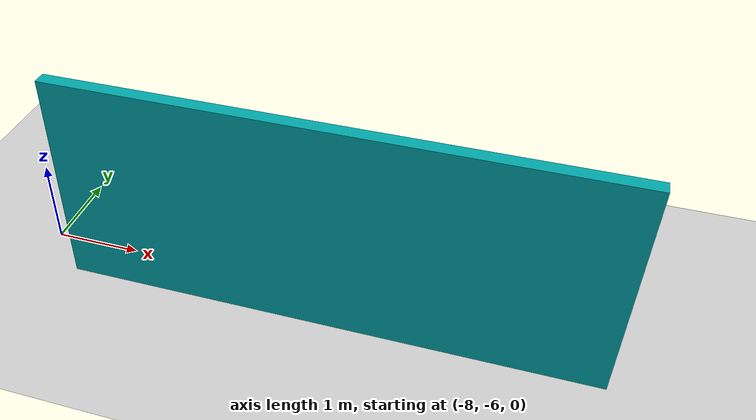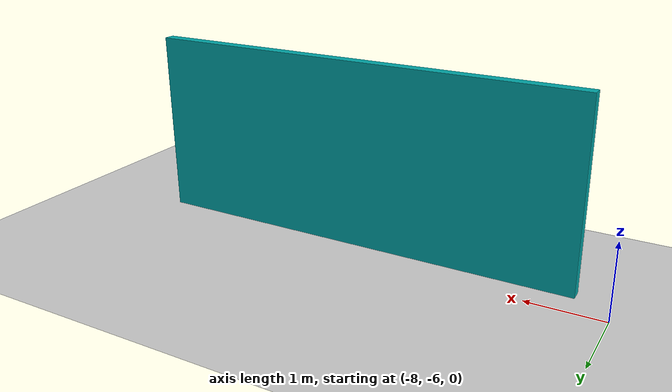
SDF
<sdf version="1.7">
 <world name="default">
  <model name="ground_plane">
   <static>1</static>
   <link name="link">
    <collision name="collision">
     <geometry><plane><normal>0 0 1</normal><size>100 100</size></plane></geometry>
     <surface>
      <contact><collide_bitmask>65535</collide_bitmask></contact>
      <friction><ode><mu>100</mu><mu2>50</mu2></ode></friction>
     </surface>
    </collision>
    <visual name="visual">
     <cast_shadows>0</cast_shadows>
     <geometry><plane><normal>0 0 1</normal><size>100 100</size></plane></geometry>
     <material>
      <script><uri>file://media/materials/scripts/gazebo.material</uri><name>Gazebo/Grey</name></script>
     </material>
    </visual>
   </link>
  </model>
  <model name="my_building_p4">
   <link name="Wall_29">
    <pose>-4.5 -9.38492 0 0 -0 0</pose>
    <inertial>
     <mass>1</mass>
     <inertia><ixx>1</ixx><ixy>0</ixy><ixz>0</ixz><iyy>1</iyy><iyz>0</iyz><izz>1</izz></inertia>
    </inertial>
    <visual name="Wall_29_Visual">
     <pose>0 0 1.25 0 -0 0</pose>
     <geometry><box><size>6 0.15 2.5</size></box></geometry>
     <material>
      <script><uri>file://media/materials/scripts/gazebo.material</uri><name>Gazebo/Grey</name></script>
      <ambient>0 0.647 0.655 1</ambient>
      <shader type="pixel"><normal_map>__default__</normal_map></shader>
      <diffuse>0 0.647 0.655 1</diffuse>
      <specular>0.01 0.01 0.01 1</specular>
      <emissive>0 0 0 1</emissive>
     </material>
     <meta><layer>0</layer></meta>
    </visual>
    <collision name="Wall_29_Collision">
     <pose>0 0 1.25 0 -0 0</pose>
     <geometry><box><size>6 0.15 2.5</size></box></geometry>
     <surface>
      <friction>
       <ode><mu>1</mu><mu2>1</mu2><fdir1>0 0 0</fdir1><slip1>0</slip1><slip2>0</slip2></ode>
       <torsional>
        <coefficient>1</coefficient>
        <patch_radius>0</patch_radius>
        <surface_radius>0</surface_radius>
        <use_patch_radius>1</use_patch_radius>
        <ode><slip>0</slip></ode>
       </torsional>
      </friction>
      <bounce><restitution_coefficient>0</restitution_coefficient><threshold>1e+06</threshold></bounce>
      <contact>
       <collide_without_contact>0</collide_without_contact>
       <collide_without_contact_bitmask>1</collide_without_contact_bitmask>
       <collide_bitmask>1</collide_bitmask>
       <ode>
        <soft_cfm>0</soft_cfm>
        <soft_erp>0.2</soft_erp>
        <kp>1e+13</kp>
        <kd>1</kd>
        <max_vel>0.01</max_vel>
        <min_depth>0</min_depth>
       </ode>
       <bullet>
        <split_impulse>1</split_impulse>
        <split_impulse_penetration_threshold>-0.01</split_impulse_penetration_threshold>
        <soft_cfm>0</soft_cfm>
        <soft_erp>0.2</soft_erp>
        <kp>1e+13</kp>
        <kd>1</kd>
       </bullet>
      </contact>
     </surface>
    </collision>
   </link>
   <static>1</static>
   <pose>-0.017657 2.964 0 0 -0 0</pose>
  </model>
 </world>
</sdf>
